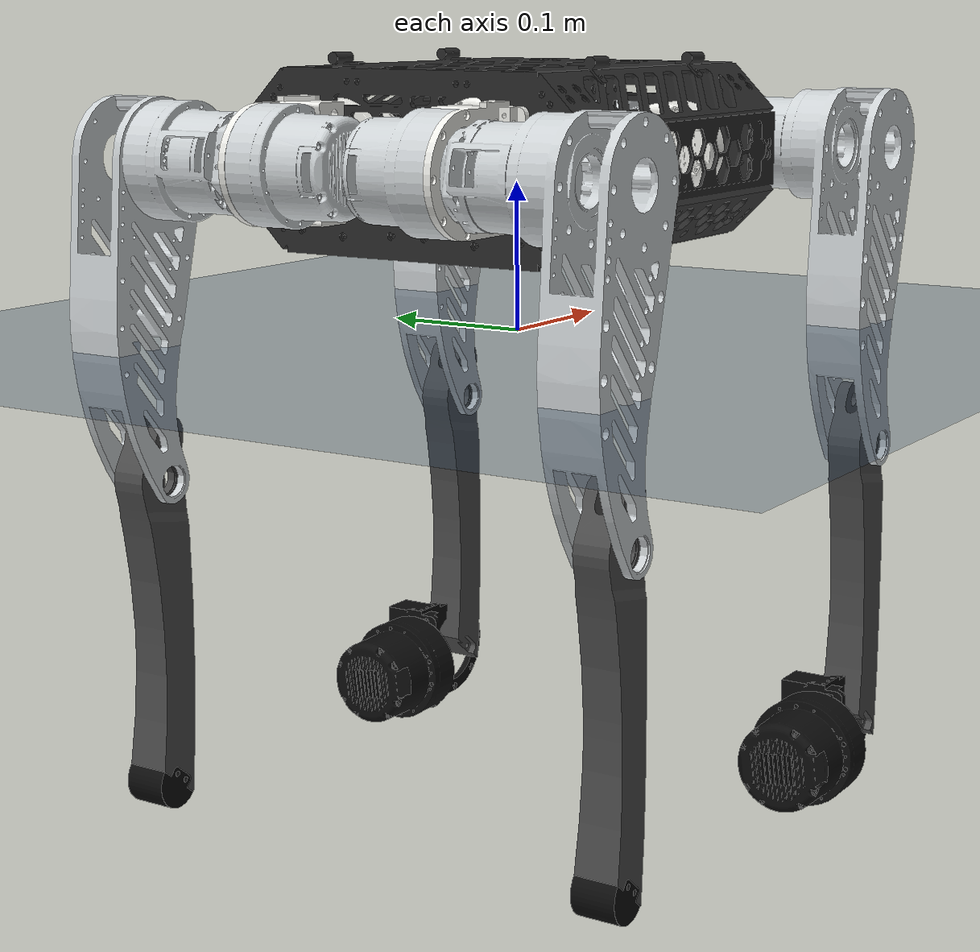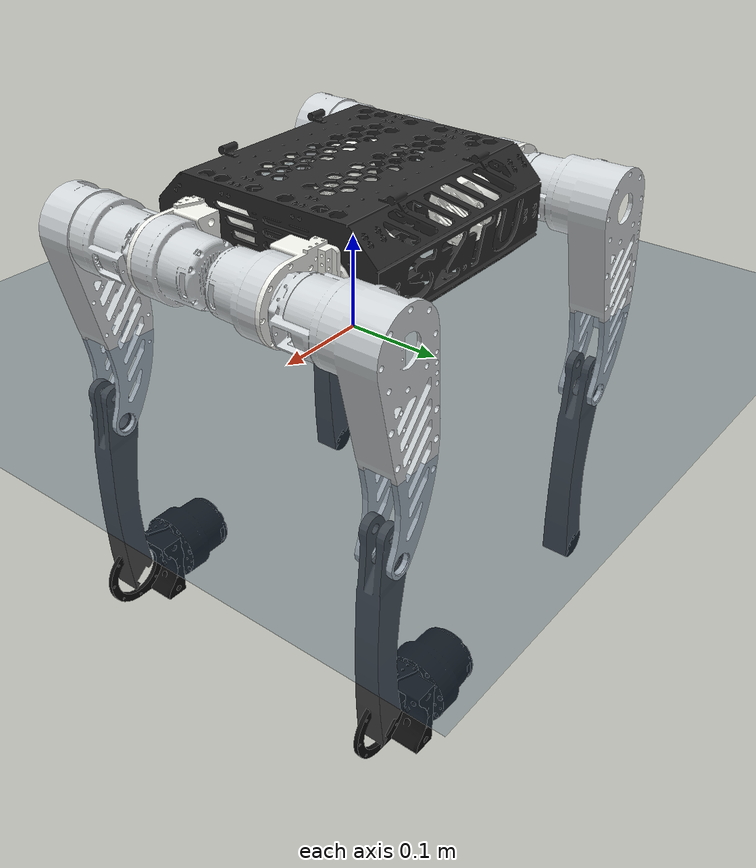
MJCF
<mujoco model="mjmodel scene">

  <!--引用机器人模型-->
  <include file="robot.xml"/>
  <!--设置场景统计信息显示范围 中心位于(0,0,0.1)，半径 0.8 米-->
  <statistic center="0 0 0.1" extent="0.8"/>

  <!--视觉全局设置-->
  <visual>
    <headlight diffuse="0.6 0.6 0.6" ambient="0.3 0.3 0.3" specular="0 0 0"/>
    <rgba haze="0.15 0.25 0.35 1"/>
    <global azimuth="-130" elevation="-20"/>
  </visual>
  <!--天空盒纹理 地面纹理-->
  <asset>
    <texture type="skybox" builtin="gradient" rgb1="0.3 0.5 0.7" rgb2="0 0 0" width="512" height="3072"/>
    <texture type="2d" name="groundplane" builtin="checker" mark="edge" rgb1="0.2 0.3 0.4" rgb2="0.1 0.2 0.3"
      markrgb="0.8 0.8 0.8" width="300" height="300"/>
    <material name="groundplane" texture="groundplane" texuniform="true" texrepeat="5 5" reflectance="0.2"/>
  </asset>
  <!--地面平面 多个盒子障碍物-->
  <worldbody>
    <light pos="0 0 1.5" dir="0 0 -1" directional="true"/>
    <geom name="floor" size="0 0 0.05" type="plane" material="groundplane"/>
  </worldbody>
</mujoco>

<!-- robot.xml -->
<mujoco model="robot_model">
    <!--指定路径-->
    <compiler angle="radian" meshdir="../meshes/"/>
    <size njmax="500" nconmax="100" />
    <!--设置碰撞锥体为椭圆型； 冲量比例系数； 仿真时间步长-->
    <option gravity='0 0 -9.806' iterations='50' solver='Newton' timestep='0.001'/>

    <!--默认参数配置 配置了碰撞的参数 电机的数据-->
    <default>
        <!--全局类-->
        <default class="robot">
        <geom friction="0.4" margin="0.001" condim="1"/> <!--滑动摩擦系数 碰撞检测的最小距离 接触条件维度-->
        <joint axis="0 1 0" damping="0.17" armature="0.01" frictionloss="0.2"/>  <!--基础关节轴，阻尼，电枢，摩擦损失-->
        <motor ctrlrange="-36 36"/> <!--默认电机控制范围为 - 20 到 20 扭矩单位-->
        <!--子类 第一关节-->
        <default class="abduction">
            <joint axis="1 0 0" range="-3.14 3.14"/>
        </default>
        <!--子类 第二关节-->
        <default class="hip">
            <default class="front_hip"> <joint range="-3.14 3.14"/> </default>
            <default class="back_hip" > <joint range="-3.14 3.14"/> </default>
        </default>
        <!--子类 第三关节-->
        <default class="knee">
            <joint range="-3.14 3.14"/>
        </default>
        <!--视觉 不参与碰撞检测-->
        <default class="visual">
            <geom type="mesh" contype="0" conaffinity="0" group="2"/>
        </default>
        <!--碰撞 参与检测-->
        <default class="collision">
            <geom group="3"/>
            <default class="foot">
            <geom size="0.018" priority="1" condim="6" friction="0.4 0.02 0.01"/> <!--球体半径 相对于父刚体的位置 接触条件维度 全维度摩擦-->
            </default>
        </default>
        </default>
    </default>

    <asset>
        <material name="color_body" rgba="0.17 0.17 0.17 1" specular="0.2" shininess="5"/>
        <material name="color_link1" rgba="0.95 0.95 0.93 1" />
        <material name="color_link2" rgba="0.82 0.84 0.85 1" specular="0.4" shininess="20"/>
        <material name="color_link3" rgba="0.3 0.3 0.3 1" specular="0.05" shininess="2"/> <!--灰色-->
        <material name="color_link4" rgba="0.05 0.05 0.05 1" specular="0.0" shininess="1"/> <!--灰色-->

        <mesh name="base_link" file="base_link.STL"/>
        <mesh name="leg1_link1" file="leg1_link1.STL"/>
        <mesh name="leg1_link2" file="leg1_link2.STL"/>
        <mesh name="leg1_link3" file="leg1_link3.STL"/>
        <mesh name="leg1_link4" file="leg1_link4.STL"/>
        <mesh name="leg2_link1" file="leg2_link1.STL"/>
        <mesh name="leg2_link2" file="leg2_link2.STL"/>
        <mesh name="leg2_link3" file="leg2_link3.STL"/>
        <mesh name="leg2_link4" file="leg2_link4.STL"/>
        <mesh name="leg3_link1" file="leg3_link1.STL"/>
        <mesh name="leg3_link2" file="leg3_link2.STL"/>
        <mesh name="leg3_link3" file="leg3_link3.STL"/>
        <mesh name="leg3_link4" file="leg3_link4.STL"/>
        <mesh name="leg4_link1" file="leg4_link1.STL"/>
        <mesh name="leg4_link2" file="leg4_link2.STL"/>
        <mesh name="leg4_link3" file="leg4_link3.STL"/>
        <mesh name="leg4_link4" file="leg4_link4.STL"/>
    </asset>

    <!--机器人结构配置-->
    <worldbody>
        <!--机体-->
        <body name="base_link" pos="0 0 0.12" childclass="robot">
            <inertial pos="0.00015 0.00075 -0.00400" quat="0.0 0.0 0.0 1.0" mass="1.73" diaginertia="0.0144799 0.0193300 0.0274701"/>  <!--惯性矩阵 转动惯量 要改-->
            <freejoint /> <!--允许六自由度运动-->
            <geom mesh="base_link" material="color_body" class="visual" /> <!--可视化-->
            <geom size="0.128 0.128 0.059" type="box" class="collision" /> <!--碰撞 要改-->
            <site name="imu" pos="0 0 0" /> <!--用于 IMU 传感器的参考点，位置与基础体重合-->

            <!--都是修改三处 相对位置 惯性等参数 碰撞-->
            <!--leg1_link1-->
            <body name="leg1_link1" pos="0.177 -0.0755 0"> <!--相对基体位置 要改 可从导出得复制-->
                <inertial pos="-0.00461 0.02471 0.00019" quat="0.28679 0.646337 -0.28679 0.646337" mass="0.68678" diaginertia="0.00057 0.000555249 0.000454751"/> <!--惯性矩阵 转动惯量 要改 可复制-->
                <joint name="leg1_1_joint" class="abduction"/> <!--关节连接 第一电机-->
                <geom  mesh="leg1_link1" material="color_link1" class="visual" /><!--可视化-->
                <geom size="0.038 0.03" pos="0 0.033 0" quat="0.707388 0.706825 0 0" type="cylinder" class="collision" /> <!--碰撞 要改 可复制-->
                <!--leg1_link2-->
                <body name="leg1_link2" pos="0 -0.0993 0">
                    <inertial pos="-0.00238 0.02441 -0.04244" quat="0.981879 0.109326 -0.0415327 0.149121" mass="1.22859" diaginertia="0.00760341 0.00707203 0.00135456"/><!--惯性矩阵 转动惯量 要改-->
                    <joint name="leg1_2_joint" class="front_hip"/> <!--关节连接 第二电机-->
                    <geom  mesh="leg1_link2" material="color_link2" class="visual" /><!--可视化-->
                    <geom size="0.038 0.0585" pos="0 0.036 0" quat="0.707388 0.706825 0 0" type="cylinder" class="collision"/><!--碰撞-->
                    <geom size="0.086 0.02 0.03" pos="0 0 -0.125" quat="0.707388 0 0.706825 0" type="box" class="collision"/><!--碰撞-->
                    <!--leg1_link3-->
                    <body name="leg1_link3" pos="0 0 -0.21">
                        <inertial pos="0.00353064 0 -0.103181" quat="0.999797 0 0.0201409 0" mass="0.21703" diaginertia="0.0011769 0.00117616 3.92612e-05"/><!--惯性矩阵 转动惯量 要改-->
                        <joint name="leg1_3_joint" class="knee"/> <!--关节连接 第二电机-->
                        <geom  mesh="leg1_link3" quat="1 0 0 0" material="color_link3" class="visual" /><!--可视化-->
                        <geom size="0.019 0.105" pos="0 0 -0.105" type="cylinder" class="collision"/><!--碰撞-->
                        <!--leg1_link4-->
                        <body name="leg1_link4" pos="0 0 -0.21" >
                            <geom material="color_link4" quat="1 0 0 0" class="visual" mesh="leg1_link4"/> <!--可视化-->
                            <geom name="leg1_link4" class="foot" /><!--碰撞-->
                        </body>
                    </body>
                </body>
            </body>

            <!--leg2_link1-->
            <body name="leg2_link1" pos="0.177 0.0755 0"><!--相对基体位置-->
                <inertial pos="-0.00461 -0.02471 0.00019" quat="0.646337 0.28679 -0.646337 0.28679" mass="0.68678" diaginertia="0.00057 0.000555249 0.000454751"/> <!--惯性矩阵 转动惯量 要改-->
                <joint name="leg2_1_joint" class="abduction"/> <!--关节连接 第一电机-->
                <geom  mesh="leg2_link1" material="color_link1" class="visual" /><!--可视化-->
                <geom size="0.038 0.03" pos="0 -0.033 0" quat="0.707388 0.706825 0 0" type="cylinder" class="collision" /> <!--碰撞-->
                <!--leg2_link2-->
                <body name="leg2_link2" pos="0 0.0993 0">
                    <inertial pos="-0.00238 -0.02441 -0.04244" quat="0.981879 -0.109326 -0.0415327 -0.149121" mass="1.22859" diaginertia="0.00760341 0.00707203 0.00135456"/><!--惯性矩阵 转动惯量 要改-->
                    <joint name="leg2_2_joint" class="front_hip"/> <!--关节连接 第二电机-->
                    <geom  mesh="leg2_link2" material="color_link2" class="visual" /><!--可视化-->
                    <geom size="0.038 0.0585" pos="0 -0.036 0" quat="0.707388 0.706825 0 0" type="cylinder" class="collision"/><!--碰撞-->
                    <geom size="0.086 0.02 0.03" pos="0 0 -0.125" quat="0.707388 0 0.706825 0" type="box" class="collision"/><!--碰撞-->
                    <!--leg2_link3-->
                    <body name="leg2_link3" pos="0 0 -0.21">
                        <inertial pos="0.00353064 0 -0.103181" quat="0.999797 0 0.0201409 0" mass="0.21703" diaginertia="0.0011769 0.00117616 3.92612e-05"/><!--惯性矩阵 转动惯量 要改-->
                        <joint name="leg2_3_joint" class="knee"/> <!--关节连接 第二电机-->
                        <geom  mesh="leg2_link3" quat="1 0 0 0" material="color_link3" class="visual" /><!--可视化-->
                        <geom size="0.019 0.105" pos="0 0 -0.105" type="cylinder" class="collision"/><!--碰撞-->
                        <!--leg2_link4-->
                        <body name="leg2_link4" pos="0 0 -0.21" >
                            <geom material="color_link4" quat="1 0 0 0" class="visual" mesh="leg2_link4"/> <!--可视化-->
                            <geom name="leg2_link4" class="foot" /><!--碰撞-->
                        </body>
                    </body>
                </body>
            </body>

            <!--leg3_link1-->
            <body name="leg3_link1" pos="-0.177 -0.0755 0"> <!--相对基体位置-->
                <inertial pos="0.00461 0.02471 0.00019" quat="0.646337 0.28679 -0.646337 0.28679" mass="0.68678" diaginertia="0.00057 0.000555249 0.000454751"/> <!--惯性矩阵 转动惯量 要改-->
                <joint name="leg3_1_joint" class="abduction"/> <!--关节连接 第一电机-->
                <geom  mesh="leg3_link1" material="color_link1" class="visual" /><!--可视化-->
                <geom size="0.038 0.03" pos="0 0.033 0" quat="0.707388 0.706825 0 0" type="cylinder" class="collision" /> <!--碰撞-->
                <!--leg3_link2-->
                <body name="leg3_link2" pos="0 -0.0993 0">
                    <inertial pos="0.00238 0.02441 -0.04244" quat="0.981879 0.109326 0.0415327 -0.149121" mass="1.22859" diaginertia="0.00760341 0.00707203 0.00135456"/><!--惯性矩阵 转动惯量 要改-->
                    <joint name="leg3_2_joint" class="front_hip"/> <!--关节连接 第二电机-->
                    <geom  mesh="leg3_link2" material="color_link2" class="visual" /><!--可视化-->
                    <geom size="0.038 0.0585" pos="0 0.036 0" quat="0.707388 0.706825 0 0" type="cylinder" class="collision"/><!--碰撞-->
                   <geom size="0.086 0.02 0.03" pos="0 0 -0.125" quat="0.707388 0 0.706825 0" type="box" class="collision"/><!--碰撞-->
                    <!--leg3_link3-->
                    <body name="leg3_link3" pos="0 0 -0.21">
                        <inertial pos="-0.00353064 0 -0.103181" quat="0.999797 0 -0.0201409 0" mass="0.21703" diaginertia="0.0011769 0.00117616 3.92612e-05"/><!--惯性矩阵 转动惯量 要改-->
                        <joint name="leg3_3_joint" class="knee"/> <!--关节连接 第二电机-->
                        <geom  mesh="leg3_link3" quat="1 0 0 0" material="color_link3" class="visual" /><!--可视化-->
                        <geom size="0.019 0.105" pos="0 0 -0.105" type="cylinder" class="collision"/><!--碰撞-->
                        <!--leg3_link4-->
                        <body name="leg3_link4" pos="0 0 -0.21" >
                            <geom material="color_link4" quat="1 0 0 0" class="visual" mesh="leg3_link4"/> <!--可视化-->
                            <geom name="leg3_link4" class="foot" /><!--碰撞-->
                        </body>
                    </body>
                </body>
            </body>

            <!--leg4_link1-->
            <body name="leg4_link1" pos="-0.177 0.0755 0"> <!--相对基体位置-->
                <inertial pos="0.00461 -0.02471 0.00019" quat="0.28679 0.646337 -0.28679 0.646337" mass="0.68678" diaginertia="0.00057 0.000555249 0.000454751"/> <!--惯性矩阵 转动惯量 要改-->
                <joint name="leg4_1_joint" class="abduction"/> <!--关节连接 第一电机-->
                <geom  mesh="leg4_link1" material="color_link1" class="visual" /><!--可视化-->
                <geom size="0.038 0.03" pos="0 -0.033 0" quat="0.707388 0.706825 0 0" type="cylinder" class="collision" /> <!--碰撞-->
                <!--leg4_link2-->
                <body name="leg4_link2" pos="0 0.0993 0">
                    <inertial pos="0.00238 -0.02441 -0.04244" quat="0.981879 -0.109326 0.0415327 0.149121" mass="1.22859" diaginertia="0.00760341 0.00707203 0.00135456"/><!--惯性矩阵 转动惯量 要改-->
                    <joint name="leg4_2_joint" class="front_hip"/> <!--关节连接 第二电机-->
                    <geom  mesh="leg4_link2" material="color_link2" class="visual" /><!--可视化-->
                    <geom size="0.038 0.0585" pos="0 -0.036 0" quat="0.707388 0.706825 0 0" type="cylinder" class="collision"/><!--碰撞-->
                    <geom size="0.086 0.02 0.03" pos="0 0 -0.125" quat="0.707388 0 0.706825 0" type="box" class="collision"/><!--碰撞-->
                    <!--leg4_link3-->
                    <body name="leg4_link3" pos="0 0 -0.21">
                        <inertial pos="-0.00353064 0 -0.103181" quat="0.999797 0 -0.0201409 0" mass="0.21703" diaginertia="0.0011769 0.00117616 3.92612e-05"/><!--惯性矩阵 转动惯量 要改-->
                        <joint name="leg4_3_joint" class="knee"/> <!--关节连接 第二电机-->
                        <geom  mesh="leg4_link3" quat="1 0 0 0" material="color_link3" class="visual" /><!--可视化-->
                        <geom size="0.019 0.105" pos="0 0 -0.105" type="cylinder" class="collision"/><!--碰撞-->
                        <!--leg4_link4-->
                        <body name="leg4_link4" pos="0 0 -0.21" >
                            <geom material="color_link4" quat="1 0 0 0" class="visual" mesh="leg4_link4"/> <!--可视化-->
                            <geom name="leg4_link4" class="foot" /><!--碰撞-->
                        </body>
                    </body>
                </body>
            </body>
        </body>
    </worldbody>

    <!--电机-->
    <actuator>
            <motor name="leg1_1"  joint="leg1_1_joint" />
            <motor name="leg1_2"  joint="leg1_2_joint" />
            <motor name="leg1_3"  joint="leg1_3_joint" />
            <motor name="leg2_1"  joint="leg2_1_joint" />
            <motor name="leg2_2"  joint="leg2_2_joint" />
            <motor name="leg2_3"  joint="leg2_3_joint" />
            <motor name="leg3_1"  joint="leg3_1_joint" />
            <motor name="leg3_2"  joint="leg3_2_joint" />
            <motor name="leg3_3"  joint="leg3_3_joint" />
            <motor name="leg4_1"  joint="leg4_1_joint" />
            <motor name="leg4_2"  joint="leg4_2_joint" />
            <motor name="leg4_3"  joint="leg4_3_joint" />
    </actuator>

    <!--电机位置速度力矩传感器 imu传感器 基体位置速度传感器-->
    <sensor>
        <jointpos name="leg1_1_p"  joint="leg1_1_joint" />
        <jointpos name="leg1_2_p"  joint="leg1_2_joint" />
        <jointpos name="leg1_3_p"  joint="leg1_3_joint" />
        <jointpos name="leg2_1_p"  joint="leg2_1_joint" />
        <jointpos name="leg2_2_p"  joint="leg2_2_joint" />
        <jointpos name="leg2_3_p"  joint="leg2_3_joint" />
        <jointpos name="leg3_1_p"  joint="leg3_1_joint" />
        <jointpos name="leg3_2_p"  joint="leg3_2_joint" />
        <jointpos name="leg3_3_p"  joint="leg3_3_joint" />
        <jointpos name="leg4_1_p"  joint="leg4_1_joint" />
        <jointpos name="leg4_2_p"  joint="leg4_2_joint" />
        <jointpos name="leg4_3_p"  joint="leg4_3_joint" />

        <jointvel name="leg1_1_v"  joint="leg1_1_joint" />
        <jointvel name="leg1_2_v"  joint="leg1_2_joint" />
        <jointvel name="leg1_3_v"  joint="leg1_3_joint" />
        <jointvel name="leg2_1_v"  joint="leg2_1_joint" />
        <jointvel name="leg2_2_v"  joint="leg2_2_joint" />
        <jointvel name="leg2_3_v"  joint="leg2_3_joint" />
        <jointvel name="leg3_1_v"  joint="leg3_1_joint" />
        <jointvel name="leg3_2_v"  joint="leg3_2_joint" />
        <jointvel name="leg3_3_v"  joint="leg3_3_joint" />
        <jointvel name="leg4_1_v"  joint="leg4_1_joint" />
        <jointvel name="leg4_2_v"  joint="leg4_2_joint" />
        <jointvel name="leg4_3_v"  joint="leg4_3_joint" />

        <framequat      name="imu_quat" objtype="site" objname="imu" />
        <gyro           name="imu_gyro" site="imu" />
        <accelerometer  name="imu_acc"  site="imu" />

        <framepos    name="frame_pos" objtype="site" objname="imu" />
        <framelinvel name="frame_vel" objtype="site" objname="imu" />
    </sensor>

    <!--初始状态 初始高度 和 四元数 四条腿电机角度-->
    <keyframe>
        <key name="home"
        qpos="0 0 0.1
                1 0 0 0
                0 1.221 -2.777
                0 1.221 -2.777
                0 1.221 -2.777
                0 1.221 -2.777 "
        ctrl="  0 1.221 -2.777
                0 1.221 -2.777
                0 1.221 -2.777
                0 1.221 -2.777 " />
    </keyframe>

</mujoco>
